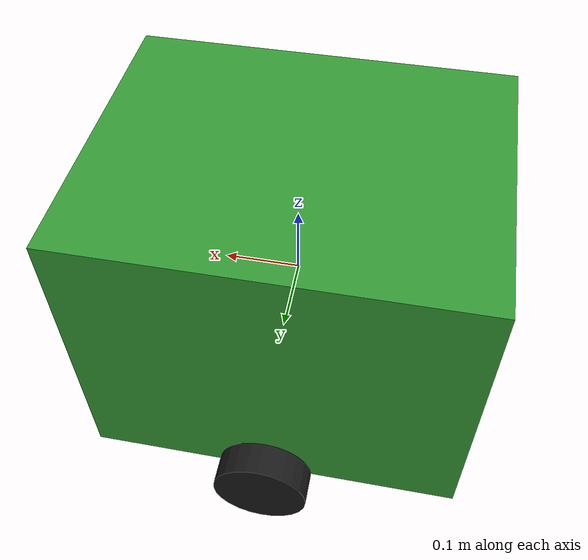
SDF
<?xml version="1.0" ?>
<sdf version="1.6">
  <model name="barn_robot">
    <static>false</static>
    <!-- Base link: 0.5m x 0.4m rectangle for BARN (matches Jackal footprint) -->
    <link name="base_link">
      <inertial>
        <mass>10.0</mass>
        <inertia>
          <ixx>0.158</ixx><iyy>0.221</iyy><izz>0.354</izz>
          <ixy>0</ixy><ixz>0</ixz><iyz>0</iyz>
        </inertia>
      </inertial>
      <collision name="base_collision">
        <geometry>
          <box><size>0.5 0.4 0.4</size></box>
        </geometry>
      </collision>
      <visual name="base_visual">
        <geometry>
          <box><size>0.5 0.4 0.4</size></box>
        </geometry>
        <material>
          <ambient>0.2 0.6 0.2 1</ambient>
          <diffuse>0.2 0.6 0.2 1</diffuse>
        </material>
      </visual>
      <!-- 2D LiDAR sensor: 270° FOV (Hokuyo-like), 10m range, 360 beams -->
      <sensor name="lidar2d" type="ray">
        <pose>0.15 0 0.25 0 0 0</pose>
        <ray>
          <scan>
            <horizontal>
              <samples>360</samples>
              <resolution>1</resolution>
              <min_angle>-2.3561945</min_angle>
              <max_angle>2.3561945</max_angle>
            </horizontal>
          </scan>
          <range>
            <min>0.05</min>
            <max>10.0</max>
            <resolution>0.01</resolution>
          </range>
        </ray>
        <plugin name="lidar_plugin" filename="libgazebo_ros_ray_sensor.so">
          <ros>
            <namespace>/robot</namespace>
            <remapping>~/out:=scan</remapping>
          </ros>
          <output_type>sensor_msgs/LaserScan</output_type>
          <frame_name>base_link</frame_name>
        </plugin>
        <always_on>true</always_on>
        <update_rate>10</update_rate>
      </sensor>
    </link>
    <!-- Differential drive plugin -->
    <plugin name="diff_drive" filename="libgazebo_ros_diff_drive.so">
      <ros>
        <namespace>/robot</namespace>
      </ros>
      <left_joint>left_wheel_joint</left_joint>
      <right_joint>right_wheel_joint</right_joint>
      <wheel_separation>0.4</wheel_separation>
      <wheel_diameter>0.12</wheel_diameter>
      <max_wheel_torque>10</max_wheel_torque>
      <max_wheel_acceleration>5.0</max_wheel_acceleration>
      <command_topic>cmd_vel</command_topic>
      <odometry_topic>odom</odometry_topic>
      <odometry_frame>odom</odometry_frame>
      <robot_base_frame>base_link</robot_base_frame>
      <publish_odom>true</publish_odom>
      <publish_odom_tf>true</publish_odom_tf>
      <publish_wheel_tf>false</publish_wheel_tf>
    </plugin>
    <!-- Left wheel -->
    <link name="left_wheel_link">
      <pose relative_to="base_link">0 0.25 -0.14 1.5707963 0 0</pose>
      <inertial><mass>0.5</mass><inertia><ixx>0.001</ixx><iyy>0.001</iyy><izz>0.001</izz></inertia></inertial>
      <collision name="collision"><geometry><cylinder><radius>0.06</radius><length>0.04</length></cylinder></geometry></collision>
      <visual name="visual"><geometry><cylinder><radius>0.06</radius><length>0.04</length></cylinder></geometry><material><ambient>0.1 0.1 0.1 1</ambient></material></visual>
    </link>
    <joint name="left_wheel_joint" type="revolute">
      <parent>base_link</parent><child>left_wheel_link</child>
      <axis><xyz>0 1 0</xyz></axis>
      <limit><lower>-1e16</lower><upper>1e16</upper></limit>
    </joint>
    <!-- Right wheel -->
    <link name="right_wheel_link">
      <pose relative_to="base_link">0 -0.25 -0.14 1.5707963 0 0</pose>
      <inertial><mass>0.5</mass><inertia><ixx>0.001</ixx><iyy>0.001</iyy><izz>0.001</izz></inertia></inertial>
      <collision name="collision"><geometry><cylinder><radius>0.06</radius><length>0.04</length></cylinder></geometry></collision>
      <visual name="visual"><geometry><cylinder><radius>0.06</radius><length>0.04</length></cylinder></geometry><material><ambient>0.1 0.1 0.1 1</ambient></material></visual>
    </link>
    <joint name="right_wheel_joint" type="revolute">
      <parent>base_link</parent><child>right_wheel_link</child>
      <axis><xyz>0 1 0</xyz></axis>
      <limit><lower>-1e16</lower><upper>1e16</upper></limit>
    </joint>
  </model>
</sdf>
